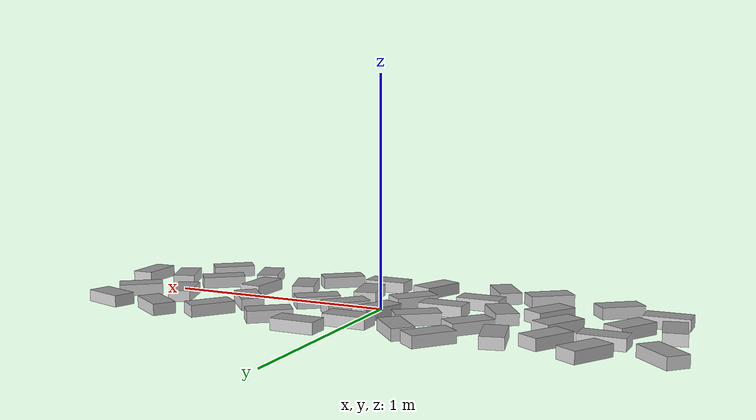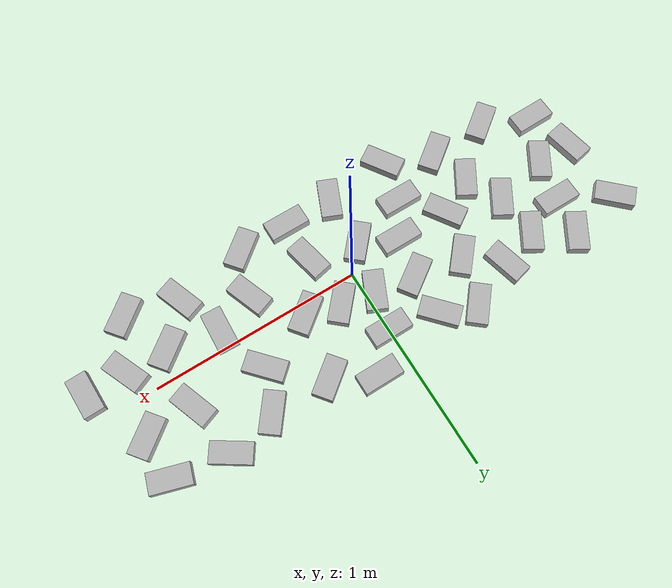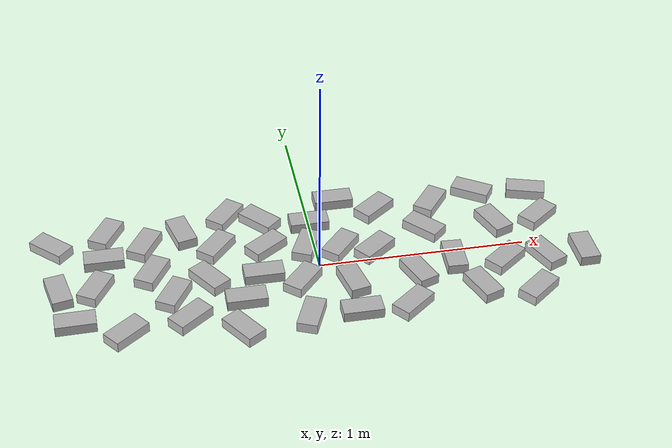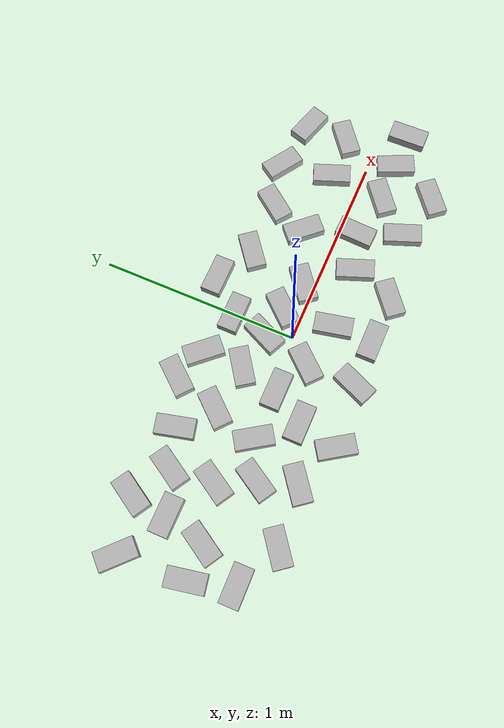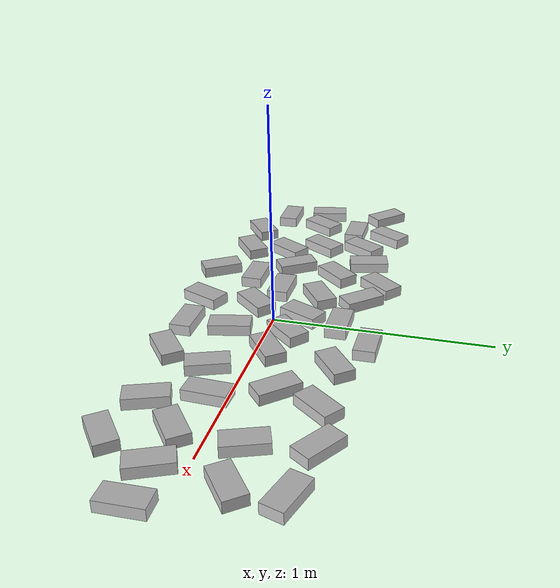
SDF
<?xml version="1.0" ?>
<sdf version="1.5">
  <model name="dbrick_static">
    <static>true</static>
    <pose>0 0 0 0 0 0</pose>
    <link name="link">
      <collision name="dbrick_static">
        <geometry>
          <mesh>
            <uri>model://dbrick_static/models/untitled.dae</uri>
            <scale>1.0 1.0 1.0</scale>
          </mesh>
        </geometry>
      </collision>
      <visual name="dbrick_static">
        <cast_shadows>true</cast_shadows>
        <geometry>
          <mesh>
            <uri>model://dbrick_static/models/untitled.dae</uri>
            <scale>1.0 1.0 1.0</scale>
          </mesh>
        </geometry>
      </visual>
    </link>
  </model>
</sdf>
